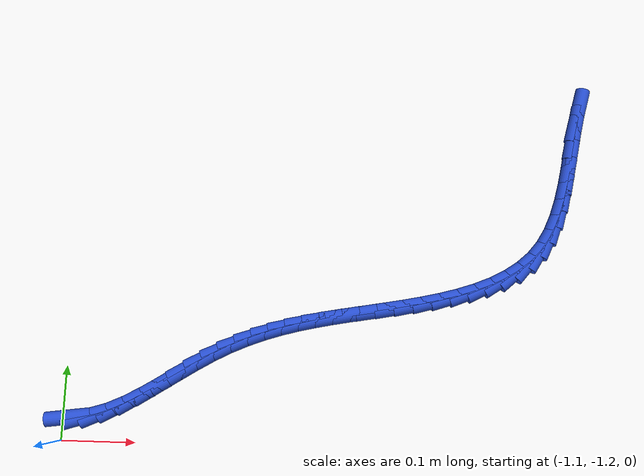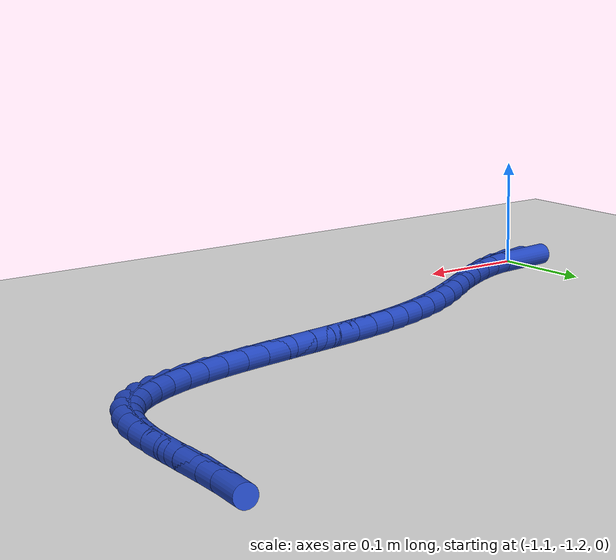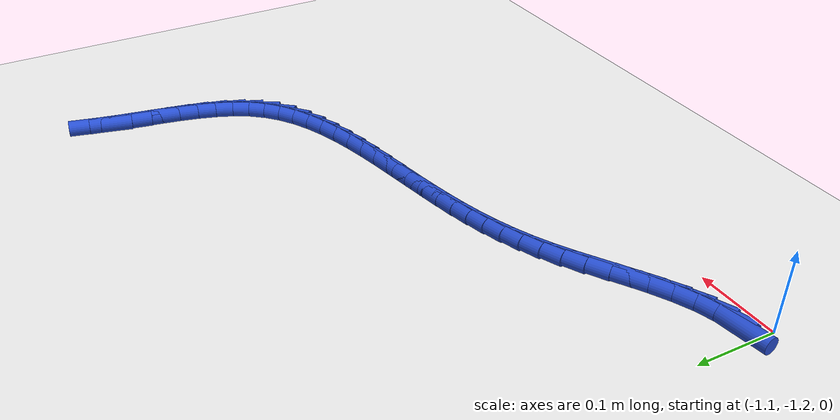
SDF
<sdf version="1.6">
 <world name="default">
  <model name="ground_plane">
   <static>1</static>
   <link name="link">
    <collision name="collision">
     <geometry><plane><normal>0 0 1</normal><size>100 100</size></plane></geometry>
     <surface><friction><ode><mu>100</mu><mu2>50</mu2></ode></friction></surface>
    </collision>
    <visual name="visual">
     <cast_shadows>0</cast_shadows>
     <geometry><plane><normal>0 0 1</normal><size>100 100</size></plane></geometry>
     <material>
      <script><uri>file://media/materials/scripts/gazebo.material</uri><name>Gazebo/WhiteGlow</name></script>
     </material>
    </visual>
   </link>
  </model>
  <model name="line">
   <link name="link_218">
    <pose>-1.0808243278436038 -1.1670550070228871 0.01 0 1.57 0.13219254041310174</pose>
    <collision name="collision">
     <geometry><cylinder><radius>0.01</radius><length>0.08</length></cylinder></geometry>
    </collision>
    <visual name="visual">
     <material>
      <script><name>Gazebo/Blue</name><uri>file://media/materials/scripts/gazebo.material</uri></script>
     </material>
     <geometry><cylinder><radius>0.01</radius><length>0.08</length></cylinder></geometry>
    </visual>
   </link>
   <link name="link_219">
    <pose>-1.059239319734006 -1.1641848921643896 0.01 0 1.57 0.30247058967417334</pose>
    <collision name="collision">
     <geometry><cylinder><radius>0.01</radius><length>0.08</length></cylinder></geometry>
    </collision>
    <visual name="visual">
     <material>
      <script><name>Gazebo/Blue</name><uri>file://media/materials/scripts/gazebo.material</uri></script>
     </material>
     <geometry><cylinder><radius>0.01</radius><length>0.08</length></cylinder></geometry>
    </visual>
   </link>
   <link name="link_220">
    <pose>-1.037202274679459 -1.1573083353172604 0.01 0 1.57 0.42192767604157355</pose>
    <collision name="collision">
     <geometry><cylinder><radius>0.01</radius><length>0.08</length></cylinder></geometry>
    </collision>
    <visual name="visual">
     <material>
      <script><name>Gazebo/Blue</name><uri>file://media/materials/scripts/gazebo.material</uri></script>
     </material>
     <geometry><cylinder><radius>0.01</radius><length>0.08</length></cylinder></geometry>
    </visual>
   </link>
   <link name="link_221">
    <pose>-1.014800327895072 -1.1472524005164124 0.01 0 1.57 0.5006200231978516</pose>
    <collision name="collision">
     <geometry><cylinder><radius>0.01</radius><length>0.08</length></cylinder></geometry>
    </collision>
    <visual name="visual">
     <material>
      <script><name>Gazebo/Blue</name><uri>file://media/materials/scripts/gazebo.material</uri></script>
     </material>
     <geometry><cylinder><radius>0.01</radius><length>0.08</length></cylinder></geometry>
    </visual>
   </link>
   <link name="link_222">
    <pose>-0.9921206145959541 -1.1348441517967587 0.01 0 1.57 0.5471849699574779</pose>
    <collision name="collision">
     <geometry><cylinder><radius>0.01</radius><length>0.08</length></cylinder></geometry>
    </collision>
    <visual name="visual">
     <material>
      <script><name>Gazebo/Blue</name><uri>file://media/materials/scripts/gazebo.material</uri></script>
     </material>
     <geometry><cylinder><radius>0.01</radius><length>0.08</length></cylinder></geometry>
    </visual>
   </link>
   <link name="link_223">
    <pose>-0.9692502699972143 -1.120910653193212 0.01 0 1.57 0.5670999062625856</pose>
    <collision name="collision">
     <geometry><cylinder><radius>0.01</radius><length>0.08</length></cylinder></geometry>
    </collision>
    <visual name="visual">
     <material>
      <script><name>Gazebo/Blue</name><uri>file://media/materials/scripts/gazebo.material</uri></script>
     </material>
     <geometry><cylinder><radius>0.01</radius><length>0.08</length></cylinder></geometry>
    </visual>
   </link>
   <link name="link_224">
    <pose>-0.9462764293139632 -1.1062789687406855 0.01 0 1.57 0.5627775025837142</pose>
    <collision name="collision">
     <geometry><cylinder><radius>0.01</radius><length>0.08</length></cylinder></geometry>
    </collision>
    <visual name="visual">
     <material>
      <script><name>Gazebo/Blue</name><uri>file://media/materials/scripts/gazebo.material</uri></script>
     </material>
     <geometry><cylinder><radius>0.01</radius><length>0.08</length></cylinder></geometry>
    </visual>
   </link>
   <link name="link_225">
    <pose>-0.9232862277613085 -1.0917761624740923 0.01 0 1.57 0.5338235100157455</pose>
    <collision name="collision">
     <geometry><cylinder><radius>0.01</radius><length>0.08</length></cylinder></geometry>
    </collision>
    <visual name="visual">
     <material>
      <script><name>Gazebo/Blue</name><uri>file://media/materials/scripts/gazebo.material</uri></script>
     </material>
     <geometry><cylinder><radius>0.01</radius><length>0.08</length></cylinder></geometry>
    </visual>
   </link>
   <link name="link_226">
    <pose>-0.9003668005543605 -1.078229298428345 0.01 0 1.57 0.48041804905074564</pose>
    <collision name="collision">
     <geometry><cylinder><radius>0.01</radius><length>0.08</length></cylinder></geometry>
    </collision>
    <visual name="visual">
     <material>
      <script><name>Gazebo/Blue</name><uri>file://media/materials/scripts/gazebo.material</uri></script>
     </material>
     <geometry><cylinder><radius>0.01</radius><length>0.08</length></cylinder></geometry>
    </visual>
   </link>
   <link name="link_227">
    <pose>-0.8775880566058718 -1.0663583310710616 0.01 0 1.57 0.4209394862896579</pose>
    <collision name="collision">
     <geometry><cylinder><radius>0.01</radius><length>0.08</length></cylinder></geometry>
    </collision>
    <visual name="visual">
     <material>
      <script><name>Gazebo/Blue</name><uri>file://media/materials/scripts/gazebo.material</uri></script>
     </material>
     <geometry><cylinder><radius>0.01</radius><length>0.08</length></cylinder></geometry>
    </visual>
   </link>
   <link name="link_228">
    <pose>-0.8549109564323121 -1.0562057963883942 0.01 0 1.57 0.364919318235747</pose>
    <collision name="collision">
     <geometry><cylinder><radius>0.01</radius><length>0.08</length></cylinder></geometry>
    </collision>
    <visual name="visual">
     <material>
      <script><name>Gazebo/Blue</name><uri>file://media/materials/scripts/gazebo.material</uri></script>
     </material>
     <geometry><cylinder><radius>0.01</radius><length>0.08</length></cylinder></geometry>
    </visual>
   </link>
   <link name="link_229">
    <pose>-0.832253991247908 -1.0475501650730508 0.01 0 1.57 0.3141269794179854</pose>
    <collision name="collision">
     <geometry><cylinder><radius>0.01</radius><length>0.08</length></cylinder></geometry>
    </collision>
    <visual name="visual">
     <material>
      <script><name>Gazebo/Blue</name><uri>file://media/materials/scripts/gazebo.material</uri></script>
     </material>
     <geometry><cylinder><radius>0.01</radius><length>0.08</length></cylinder></geometry>
    </visual>
   </link>
   <link name="link_230">
    <pose>-0.8095355559417768 -1.040169308888235 0.01 0 1.57 0.27004470222384486</pose>
    <collision name="collision">
     <geometry><cylinder><radius>0.01</radius><length>0.08</length></cylinder></geometry>
    </collision>
    <visual name="visual">
     <material>
      <script><name>Gazebo/Blue</name><uri>file://media/materials/scripts/gazebo.material</uri></script>
     </material>
     <geometry><cylinder><radius>0.01</radius><length>0.08</length></cylinder></geometry>
    </visual>
   </link>
   <link name="link_231">
    <pose>-0.7866740454030354 -1.03384109959715 0.01 0 1.57 0.23378329206875573</pose>
    <collision name="collision">
     <geometry><cylinder><radius>0.01</radius><length>0.08</length></cylinder></geometry>
    </collision>
    <visual name="visual">
     <material>
      <script><name>Gazebo/Blue</name><uri>file://media/materials/scripts/gazebo.material</uri></script>
     </material>
     <geometry><cylinder><radius>0.01</radius><length>0.08</length></cylinder></geometry>
    </visual>
   </link>
   <link name="link_232">
    <pose>-0.7635878545208015 -1.0283434089629995 0.01 0 1.57 0.20604540718546102</pose>
    <collision name="collision">
     <geometry><cylinder><radius>0.01</radius><length>0.08</length></cylinder></geometry>
    </collision>
    <visual name="visual">
     <material>
      <script><name>Gazebo/Blue</name><uri>file://media/materials/scripts/gazebo.material</uri></script>
     </material>
     <geometry><cylinder><radius>0.01</radius><length>0.08</length></cylinder></geometry>
    </visual>
   </link>
   <link name="link_233">
    <pose>-0.740195378184193 -1.0234541087489875 0.01 0 1.57 0.18714367596288606</pose>
    <collision name="collision">
     <geometry><cylinder><radius>0.01</radius><length>0.08</length></cylinder></geometry>
    </collision>
    <visual name="visual">
     <material>
      <script><name>Gazebo/Blue</name><uri>file://media/materials/scripts/gazebo.material</uri></script>
     </material>
     <geometry><cylinder><radius>0.01</radius><length>0.08</length></cylinder></geometry>
    </visual>
   </link>
   <link name="link_234">
    <pose>-0.7164150112823255 -1.0189510707183165 0.01 0 1.57 0.17705137733580673</pose>
    <collision name="collision">
     <geometry><cylinder><radius>0.01</radius><length>0.08</length></cylinder></geometry>
    </collision>
    <visual name="visual">
     <material>
      <script><name>Gazebo/Blue</name><uri>file://media/materials/scripts/gazebo.material</uri></script>
     </material>
     <geometry><cylinder><radius>0.01</radius><length>0.08</length></cylinder></geometry>
    </visual>
   </link>
   <link name="link_235">
    <pose>-0.6921651487043173 -1.0146121666341907 0.01 0 1.57 0.17546423349714638</pose>
    <collision name="collision">
     <geometry><cylinder><radius>0.01</radius><length>0.08</length></cylinder></geometry>
    </collision>
    <visual name="visual">
     <material>
      <script><name>Gazebo/Blue</name><uri>file://media/materials/scripts/gazebo.material</uri></script>
     </material>
     <geometry><cylinder><radius>0.01</radius><length>0.08</length></cylinder></geometry>
    </visual>
   </link>
   <link name="link_236">
    <pose>-0.6673641853392858 -1.0102152682598136 0.01 0 1.57 0.18230241541096903</pose>
    <collision name="collision">
     <geometry><cylinder><radius>0.01</radius><length>0.08</length></cylinder></geometry>
    </collision>
    <visual name="visual">
     <material>
      <script><name>Gazebo/Blue</name><uri>file://media/materials/scripts/gazebo.material</uri></script>
     </material>
     <geometry><cylinder><radius>0.01</radius><length>0.08</length></cylinder></geometry>
    </visual>
   </link>
   <link name="link_237">
    <pose>-0.6419907509799972 -1.0055376963065903 0.01 0 1.57 0.19936847546096187</pose>
    <collision name="collision">
     <geometry><cylinder><radius>0.01</radius><length>0.08</length></cylinder></geometry>
    </collision>
    <visual name="visual">
     <material>
      <script><name>Gazebo/Blue</name><uri>file://media/materials/scripts/gazebo.material</uri></script>
     </material>
     <geometry><cylinder><radius>0.01</radius><length>0.08</length></cylinder></geometry>
    </visual>
   </link>
   <link name="link_238">
    <pose>-0.6163351779103321 -1.0003539199130358 0.01 0 1.57 0.2275792799852512</pose>
    <collision name="collision">
     <geometry><cylinder><radius>0.01</radius><length>0.08</length></cylinder></geometry>
    </collision>
    <visual name="visual">
     <material>
      <script><name>Gazebo/Blue</name><uri>file://media/materials/scripts/gazebo.material</uri></script>
     </material>
     <geometry><cylinder><radius>0.01</radius><length>0.08</length></cylinder></geometry>
    </visual>
   </link>
   <link name="link_239">
    <pose>-0.5907883224045714 -0.994437488585984 0.01 0 1.57 0.2679039743658556</pose>
    <collision name="collision">
     <geometry><cylinder><radius>0.01</radius><length>0.08</length></cylinder></geometry>
    </collision>
    <visual name="visual">
     <material>
      <script><name>Gazebo/Blue</name><uri>file://media/materials/scripts/gazebo.material</uri></script>
     </material>
     <geometry><cylinder><radius>0.01</radius><length>0.08</length></cylinder></geometry>
    </visual>
   </link>
   <link name="link_240">
    <pose>-0.5657410899143024 -0.9875619513823762 0.01 0 1.57 0.3220805885138382</pose>
    <collision name="collision">
     <geometry><cylinder><radius>0.01</radius><length>0.08</length></cylinder></geometry>
    </collision>
    <visual name="visual">
     <material>
      <script><name>Gazebo/Blue</name><uri>file://media/materials/scripts/gazebo.material</uri></script>
     </material>
     <geometry><cylinder><radius>0.01</radius><length>0.08</length></cylinder></geometry>
    </visual>
   </link>
   <link name="link_241">
    <pose>-0.5415843858911117 -0.9795008573591545 0.01 0 1.57 0.3926190293927903</pose>
    <collision name="collision">
     <geometry><cylinder><radius>0.01</radius><length>0.08</length></cylinder></geometry>
    </collision>
    <visual name="visual">
     <material>
      <script><name>Gazebo/Blue</name><uri>file://media/materials/scripts/gazebo.material</uri></script>
     </material>
     <geometry><cylinder><radius>0.01</radius><length>0.08</length></cylinder></geometry>
    </visual>
   </link>
   <link name="link_242">
    <pose>-0.5187091157865863 -0.9700277555732592 0.01 0 1.57 0.48270806937419974</pose>
    <collision name="collision">
     <geometry><cylinder><radius>0.01</radius><length>0.08</length></cylinder></geometry>
    </collision>
    <visual name="visual">
     <material>
      <script><name>Gazebo/Blue</name><uri>file://media/materials/scripts/gazebo.material</uri></script>
     </material>
     <geometry><cylinder><radius>0.01</radius><length>0.08</length></cylinder></geometry>
    </visual>
   </link>
   <link name="link_243">
    <pose>-0.49750618505231353 -0.9589161950816325 0.01 0 1.57 0.5957992911668456</pose>
    <collision name="collision">
     <geometry><cylinder><radius>0.01</radius><length>0.08</length></cylinder></geometry>
    </collision>
    <visual name="visual">
     <material>
      <script><name>Gazebo/Blue</name><uri>file://media/materials/scripts/gazebo.material</uri></script>
     </material>
     <geometry><cylinder><radius>0.01</radius><length>0.08</length></cylinder></geometry>
    </visual>
   </link>
   <link name="link_244">
    <pose>-0.4783664991398797 -0.9459397249412151 0.01 0 1.57 0.7344962374293348</pose>
    <collision name="collision">
     <geometry><cylinder><radius>0.01</radius><length>0.08</length></cylinder></geometry>
    </collision>
    <visual name="visual">
     <material>
      <script><name>Gazebo/Blue</name><uri>file://media/materials/scripts/gazebo.material</uri></script>
     </material>
     <geometry><cylinder><radius>0.01</radius><length>0.08</length></cylinder></geometry>
    </visual>
   </link>
   <link name="link_245">
    <pose>-0.4616809635008722 -0.9308718942089491 0.01 0 1.57 0.8971761557686331</pose>
    <collision name="collision">
     <geometry><cylinder><radius>0.01</radius><length>0.08</length></cylinder></geometry>
    </collision>
    <visual name="visual">
     <material>
      <script><name>Gazebo/Blue</name><uri>file://media/materials/scripts/gazebo.material</uri></script>
     </material>
     <geometry><cylinder><radius>0.01</radius><length>0.08</length></cylinder></geometry>
    </visual>
   </link>
   <link name="link_246">
    <pose>-0.44781707835978074 -0.9135021651577094 0.01 0 1.57 1.0547710020222505</pose>
    <collision name="collision">
     <geometry><cylinder><radius>0.01</radius><length>0.08</length></cylinder></geometry>
    </collision>
    <visual name="visual">
     <material>
      <script><name>Gazebo/Blue</name><uri>file://media/materials/scripts/gazebo.material</uri></script>
     </material>
     <geometry><cylinder><radius>0.01</radius><length>0.08</length></cylinder></geometry>
    </visual>
   </link>
   <link name="link_247">
    <pose>-0.4367062189811151 -0.893916521458507 0.01 0 1.57 1.181037421934391</pose>
    <collision name="collision">
     <geometry><cylinder><radius>0.01</radius><length>0.08</length></cylinder></geometry>
    </collision>
    <visual name="visual">
     <material>
      <script><name>Gazebo/Blue</name><uri>file://media/materials/scripts/gazebo.material</uri></script>
     </material>
     <geometry><cylinder><radius>0.01</radius><length>0.08</length></cylinder></geometry>
    </visual>
   </link>
   <link name="link_248">
    <pose>-0.4278938294714009 -0.872463341410156 0.01 0 1.57 1.2756357052449578</pose>
    <collision name="collision">
     <geometry><cylinder><radius>0.01</radius><length>0.08</length></cylinder></geometry>
    </collision>
    <visual name="visual">
     <material>
      <script><name>Gazebo/Blue</name><uri>file://media/materials/scripts/gazebo.material</uri></script>
     </material>
     <geometry><cylinder><radius>0.01</radius><length>0.08</length></cylinder></geometry>
    </visual>
   </link>
   <link name="link_249">
    <pose>-0.4209120345403601 -0.8495000591705103 0.01 0 1.57 1.3418782095204889</pose>
    <collision name="collision">
     <geometry><cylinder><radius>0.01</radius><length>0.08</length></cylinder></geometry>
    </collision>
    <visual name="visual">
     <material>
      <script><name>Gazebo/Blue</name><uri>file://media/materials/scripts/gazebo.material</uri></script>
     </material>
     <geometry><cylinder><radius>0.01</radius><length>0.08</length></cylinder></geometry>
    </visual>
   </link>
   <link name="link_250">
    <pose>-0.4152929588977154 -0.8253841088974256 0.01 0 1.57 1.3833789661376121</pose>
    <collision name="collision">
     <geometry><cylinder><radius>0.01</radius><length>0.08</length></cylinder></geometry>
    </collision>
    <visual name="visual">
     <material>
      <script><name>Gazebo/Blue</name><uri>file://media/materials/scripts/gazebo.material</uri></script>
     </material>
     <geometry><cylinder><radius>0.01</radius><length>0.08</length></cylinder></geometry>
    </visual>
   </link>
   <link name="link_251">
    <pose>-0.41056872725318927 -0.8004729247487576 0.01 0 1.57 1.4028687671340223</pose>
    <collision name="collision">
     <geometry><cylinder><radius>0.01</radius><length>0.08</length></cylinder></geometry>
    </collision>
    <visual name="visual">
     <material>
      <script><name>Gazebo/Blue</name><uri>file://media/materials/scripts/gazebo.material</uri></script>
     </material>
     <geometry><cylinder><radius>0.01</radius><length>0.08</length></cylinder></geometry>
    </visual>
   </link>
   <link name="link_252">
    <pose>-0.4062714643165041 -0.7751239408823614 0.01 0 1.57 1.4018260416696928</pose>
    <collision name="collision">
     <geometry><cylinder><radius>0.01</radius><length>0.08</length></cylinder></geometry>
    </collision>
    <visual name="visual">
     <material>
      <script><name>Gazebo/Blue</name><uri>file://media/materials/scripts/gazebo.material</uri></script>
     </material>
     <geometry><cylinder><radius>0.01</radius><length>0.08</length></cylinder></geometry>
    </visual>
   </link>
   <link name="link_253">
    <pose>-0.4019332947973826 -0.7496945914560927 0.01 0 1.57 1.3804256526986516</pose>
    <collision name="collision">
     <geometry><cylinder><radius>0.01</radius><length>0.08</length></cylinder></geometry>
    </collision>
    <visual name="visual">
     <material>
      <script><name>Gazebo/Blue</name><uri>file://media/materials/scripts/gazebo.material</uri></script>
     </material>
     <geometry><cylinder><radius>0.01</radius><length>0.08</length></cylinder></geometry>
    </visual>
   </link>
   <link name="link_254">
    <pose>-0.3970863434055471 -0.7245423106278063 0.01 0 1.57 1.337591960863233</pose>
    <collision name="collision">
     <geometry><cylinder><radius>0.01</radius><length>0.08</length></cylinder></geometry>
    </collision>
    <visual name="visual">
     <material>
      <script><name>Gazebo/Blue</name><uri>file://media/materials/scripts/gazebo.material</uri></script>
     </material>
     <geometry><cylinder><radius>0.01</radius><length>0.08</length></cylinder></geometry>
    </visual>
   </link>
  </model>
 </world>
</sdf>
